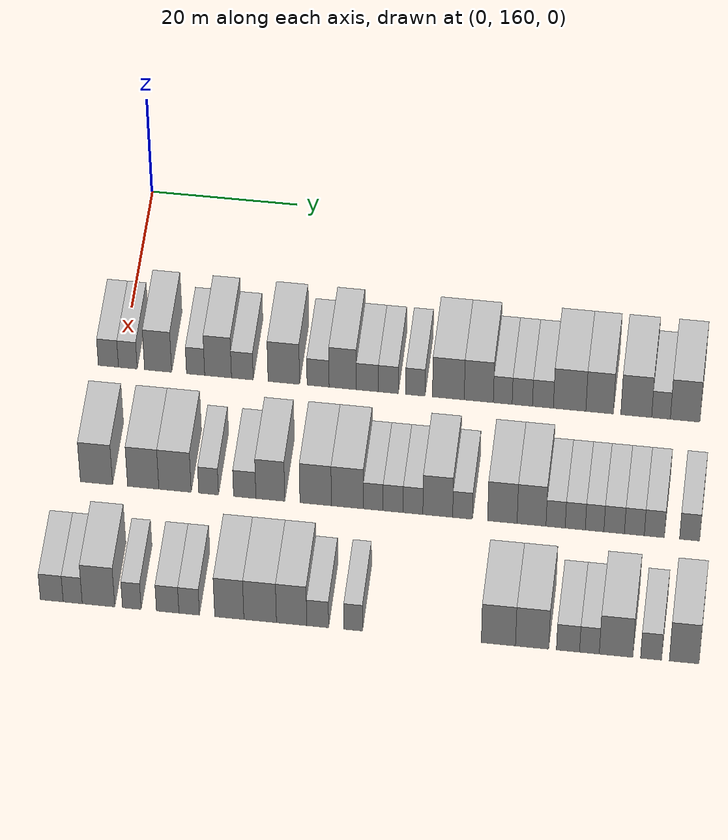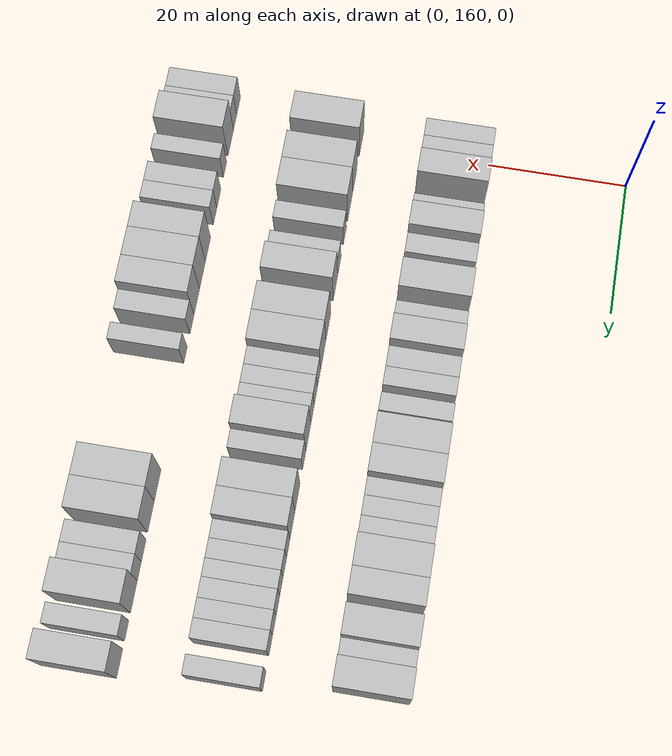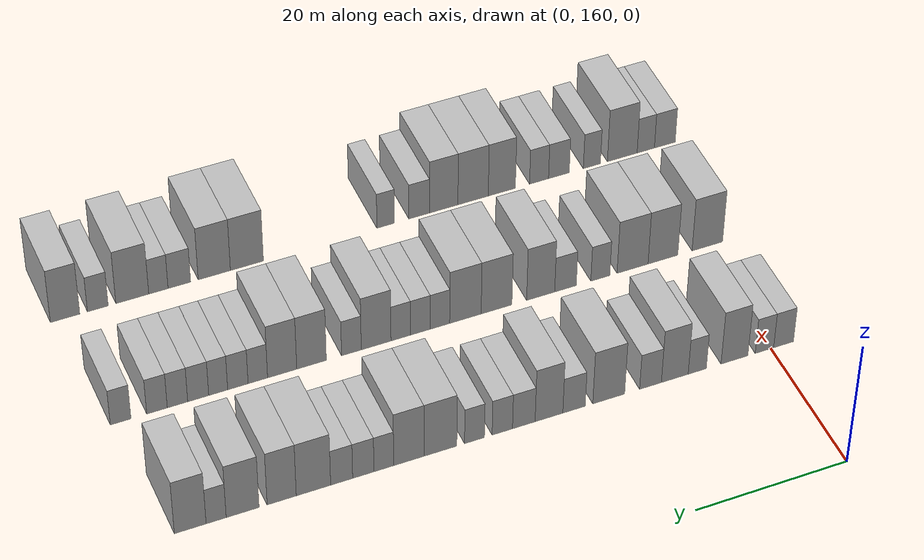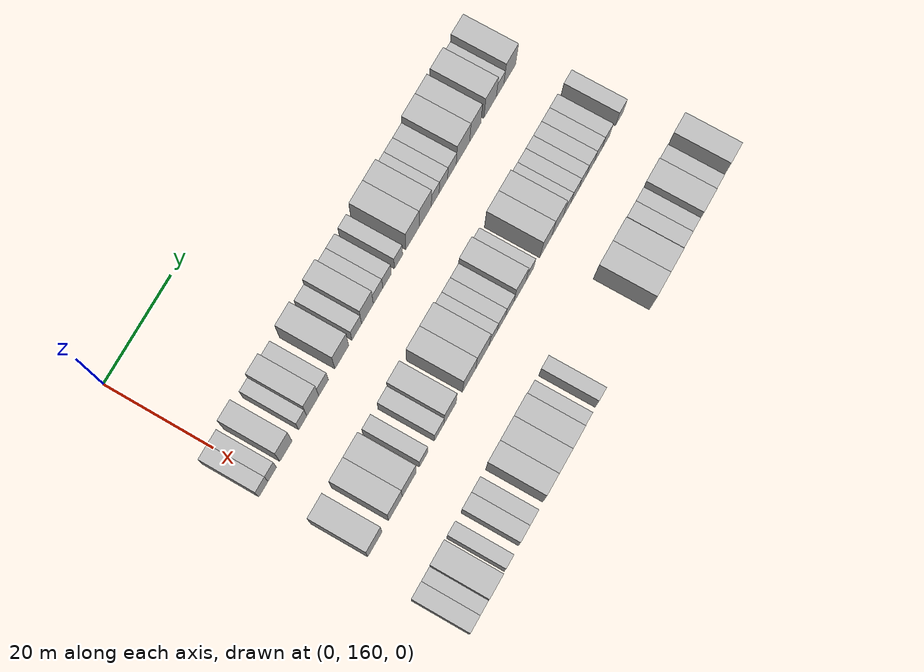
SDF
<sdf version="1.6">
 <world name="default">
  <model name="building_101">
   <static>1</static>
   <pose>25.0000 158.3298 0 0.000000 0.000000 0.000000</pose>
   <link name="link">
    <pose>0 0 3.00 0 0 0</pose>
    <collision name="collision"><geometry><box><size>10.0000 2.7165 6.0000</size></box></geometry></collision>
    <visual name="visual">
     <cast_shadows>0</cast_shadows>
     <geometry><box><size>10.0000 2.7165 6.0000</size></box></geometry>
     <material>
      <script>
       <uri>model://HANNAS_wall/materials/scripts</uri>
       <uri>model://HANNAS_wall/materials/textures</uri>
       <name>vrc/HANNAS_wall</name>
      </script>
     </material>
    </visual>
   </link>
  </model>
  <model name="building_102">
   <static>1</static>
   <pose>25.0000 160.9540 0 0.000000 0.000000 0.000000</pose>
   <link name="link">
    <pose>0 0 3.00 0 0 0</pose>
    <collision name="collision"><geometry><box><size>10.0000 2.5319 6.0000</size></box></geometry></collision>
    <visual name="visual">
     <cast_shadows>0</cast_shadows>
     <geometry><box><size>10.0000 2.5319 6.0000</size></box></geometry>
     <material>
      <script>
       <uri>model://HANNAS_wall/materials/scripts</uri>
       <uri>model://HANNAS_wall/materials/textures</uri>
       <name>vrc/HANNAS_wall</name>
      </script>
     </material>
    </visual>
   </link>
  </model>
  <model name="building_103">
   <static>1</static>
   <pose>25.0000 165.0510 0 0.000000 0.000000 0.000000</pose>
   <link name="link">
    <pose>0 0 4.50 0 0 0</pose>
    <collision name="collision"><geometry><box><size>10.0000 3.6620 9.0000</size></box></geometry></collision>
    <visual name="visual">
     <cast_shadows>0</cast_shadows>
     <geometry><box><size>10.0000 3.6620 9.0000</size></box></geometry>
     <material>
      <script>
       <uri>model://HANNAS_wall/materials/scripts</uri>
       <uri>model://HANNAS_wall/materials/textures</uri>
       <name>vrc/HANNAS_wall</name>
      </script>
     </material>
    </visual>
   </link>
  </model>
  <model name="building_104">
   <static>1</static>
   <pose>25.0000 170.1098 0 0.000000 0.000000 0.000000</pose>
   <link name="link">
    <pose>0 0 3.00 0 0 0</pose>
    <collision name="collision"><geometry><box><size>10.0000 2.4556 6.0000</size></box></geometry></collision>
    <visual name="visual">
     <cast_shadows>0</cast_shadows>
     <geometry><box><size>10.0000 2.4556 6.0000</size></box></geometry>
     <material>
      <script>
       <uri>model://HANNAS_wall/materials/scripts</uri>
       <uri>model://HANNAS_wall/materials/textures</uri>
       <name>vrc/HANNAS_wall</name>
      </script>
     </material>
    </visual>
   </link>
  </model>
  <model name="building_105">
   <static>1</static>
   <pose>25.0000 173.1422 0 0.000000 0.000000 0.000000</pose>
   <link name="link">
    <pose>0 0 4.50 0 0 0</pose>
    <collision name="collision"><geometry><box><size>10.0000 3.6090 9.0000</size></box></geometry></collision>
    <visual name="visual">
     <cast_shadows>0</cast_shadows>
     <geometry><box><size>10.0000 3.6090 9.0000</size></box></geometry>
     <material>
      <script>
       <uri>model://HANNAS_wall/materials/scripts</uri>
       <uri>model://HANNAS_wall/materials/textures</uri>
       <name>vrc/HANNAS_wall</name>
      </script>
     </material>
    </visual>
   </link>
  </model>
  <model name="building_106">
   <static>1</static>
   <pose>25.0000 176.4100 0 0.000000 0.000000 0.000000</pose>
   <link name="link">
    <pose>0 0 3.00 0 0 0</pose>
    <collision name="collision"><geometry><box><size>10.0000 2.9267 6.0000</size></box></geometry></collision>
    <visual name="visual">
     <cast_shadows>0</cast_shadows>
     <geometry><box><size>10.0000 2.9267 6.0000</size></box></geometry>
     <material>
      <script>
       <uri>model://HANNAS_wall/materials/scripts</uri>
       <uri>model://HANNAS_wall/materials/textures</uri>
       <name>vrc/HANNAS_wall</name>
      </script>
     </material>
    </visual>
   </link>
  </model>
  <model name="building_107">
   <static>1</static>
   <pose>25.0000 181.9964 0 0.000000 0.000000 0.000000</pose>
   <link name="link">
    <pose>0 0 4.50 0 0 0</pose>
    <collision name="collision"><geometry><box><size>10.0000 4.2461 9.0000</size></box></geometry></collision>
    <visual name="visual">
     <cast_shadows>0</cast_shadows>
     <geometry><box><size>10.0000 4.2461 9.0000</size></box></geometry>
     <material>
      <script>
       <uri>model://HANNAS_wall/materials/scripts</uri>
       <uri>model://HANNAS_wall/materials/textures</uri>
       <name>vrc/HANNAS_wall</name>
      </script>
     </material>
    </visual>
   </link>
  </model>
  <model name="building_108">
   <static>1</static>
   <pose>25.0000 186.6032 0 0.000000 0.000000 0.000000</pose>
   <link name="link">
    <pose>0 0 3.00 0 0 0</pose>
    <collision name="collision"><geometry><box><size>10.0000 2.9675 6.0000</size></box></geometry></collision>
    <visual name="visual">
     <cast_shadows>0</cast_shadows>
     <geometry><box><size>10.0000 2.9675 6.0000</size></box></geometry>
     <material>
      <script>
       <uri>model://HANNAS_wall/materials/scripts</uri>
       <uri>model://HANNAS_wall/materials/textures</uri>
       <name>vrc/HANNAS_wall</name>
      </script>
     </material>
    </visual>
   </link>
  </model>
  <model name="building_109">
   <static>1</static>
   <pose>25.0000 189.9168 0 0.000000 0.000000 0.000000</pose>
   <link name="link">
    <pose>0 0 4.50 0 0 0</pose>
    <collision name="collision"><geometry><box><size>10.0000 3.6596 9.0000</size></box></geometry></collision>
    <visual name="visual">
     <cast_shadows>0</cast_shadows>
     <geometry><box><size>10.0000 3.6596 9.0000</size></box></geometry>
     <material>
      <script>
       <uri>model://HANNAS_wall/materials/scripts</uri>
       <uri>model://HANNAS_wall/materials/textures</uri>
       <name>vrc/HANNAS_wall</name>
      </script>
     </material>
    </visual>
   </link>
  </model>
  <model name="building_110">
   <static>1</static>
   <pose>25.0000 193.2281 0 0.000000 0.000000 0.000000</pose>
   <link name="link">
    <pose>0 0 3.00 0 0 0</pose>
    <collision name="collision"><geometry><box><size>10.0000 2.9630 6.0000</size></box></geometry></collision>
    <visual name="visual">
     <cast_shadows>0</cast_shadows>
     <geometry><box><size>10.0000 2.9630 6.0000</size></box></geometry>
     <material>
      <script>
       <uri>model://HANNAS_wall/materials/scripts</uri>
       <uri>model://HANNAS_wall/materials/textures</uri>
       <name>vrc/HANNAS_wall</name>
      </script>
     </material>
    </visual>
   </link>
  </model>
  <model name="building_111">
   <static>1</static>
   <pose>25.0000 196.0429 0 0.000000 0.000000 0.000000</pose>
   <link name="link">
    <pose>0 0 3.00 0 0 0</pose>
    <collision name="collision"><geometry><box><size>10.0000 2.6667 6.0000</size></box></geometry></collision>
    <visual name="visual">
     <cast_shadows>0</cast_shadows>
     <geometry><box><size>10.0000 2.6667 6.0000</size></box></geometry>
     <material>
      <script>
       <uri>model://HANNAS_wall/materials/scripts</uri>
       <uri>model://HANNAS_wall/materials/textures</uri>
       <name>vrc/HANNAS_wall</name>
      </script>
     </material>
    </visual>
   </link>
  </model>
  <model name="building_112">
   <static>1</static>
   <pose>25.0000 199.6709 0 0.000000 0.000000 0.000000</pose>
   <link name="link">
    <pose>0 0 3.00 0 0 0</pose>
    <collision name="collision"><geometry><box><size>10.0000 2.5892 6.0000</size></box></geometry></collision>
    <visual name="visual">
     <cast_shadows>0</cast_shadows>
     <geometry><box><size>10.0000 2.5892 6.0000</size></box></geometry>
     <material>
      <script>
       <uri>model://HANNAS_wall/materials/scripts</uri>
       <uri>model://HANNAS_wall/materials/textures</uri>
       <name>vrc/HANNAS_wall</name>
      </script>
     </material>
    </visual>
   </link>
  </model>
  <model name="building_113">
   <static>1</static>
   <pose>25.0000 204.0919 0 0.000000 0.000000 0.000000</pose>
   <link name="link">
    <pose>0 0 4.50 0 0 0</pose>
    <collision name="collision"><geometry><box><size>10.0000 4.2529 9.0000</size></box></geometry></collision>
    <visual name="visual">
     <cast_shadows>0</cast_shadows>
     <geometry><box><size>10.0000 4.2529 9.0000</size></box></geometry>
     <material>
      <script>
       <uri>model://HANNAS_wall/materials/scripts</uri>
       <uri>model://HANNAS_wall/materials/textures</uri>
       <name>vrc/HANNAS_wall</name>
      </script>
     </material>
    </visual>
   </link>
  </model>
  <model name="building_114">
   <static>1</static>
   <pose>25.0000 208.1643 0 0.000000 0.000000 0.000000</pose>
   <link name="link">
    <pose>0 0 4.50 0 0 0</pose>
    <collision name="collision"><geometry><box><size>10.0000 3.8919 9.0000</size></box></geometry></collision>
    <visual name="visual">
     <cast_shadows>0</cast_shadows>
     <geometry><box><size>10.0000 3.8919 9.0000</size></box></geometry>
     <material>
      <script>
       <uri>model://HANNAS_wall/materials/scripts</uri>
       <uri>model://HANNAS_wall/materials/textures</uri>
       <name>vrc/HANNAS_wall</name>
      </script>
     </material>
    </visual>
   </link>
  </model>
  <model name="building_115">
   <static>1</static>
   <pose>25.0000 211.3711 0 0.000000 0.000000 0.000000</pose>
   <link name="link">
    <pose>0 0 3.00 0 0 0</pose>
    <collision name="collision"><geometry><box><size>10.0000 2.5217 6.0000</size></box></geometry></collision>
    <visual name="visual">
     <cast_shadows>0</cast_shadows>
     <geometry><box><size>10.0000 2.5217 6.0000</size></box></geometry>
     <material>
      <script>
       <uri>model://HANNAS_wall/materials/scripts</uri>
       <uri>model://HANNAS_wall/materials/textures</uri>
       <name>vrc/HANNAS_wall</name>
      </script>
     </material>
    </visual>
   </link>
  </model>
  <model name="building_116">
   <static>1</static>
   <pose>25.0000 213.9885 0 0.000000 0.000000 0.000000</pose>
   <link name="link">
    <pose>0 0 3.00 0 0 0</pose>
    <collision name="collision"><geometry><box><size>10.0000 2.7131 6.0000</size></box></geometry></collision>
    <visual name="visual">
     <cast_shadows>0</cast_shadows>
     <geometry><box><size>10.0000 2.7131 6.0000</size></box></geometry>
     <material>
      <script>
       <uri>model://HANNAS_wall/materials/scripts</uri>
       <uri>model://HANNAS_wall/materials/textures</uri>
       <name>vrc/HANNAS_wall</name>
      </script>
     </material>
    </visual>
   </link>
  </model>
  <model name="building_117">
   <static>1</static>
   <pose>25.0000 216.7431 0 0.000000 0.000000 0.000000</pose>
   <link name="link">
    <pose>0 0 3.00 0 0 0</pose>
    <collision name="collision"><geometry><box><size>10.0000 2.7962 6.0000</size></box></geometry></collision>
    <visual name="visual">
     <cast_shadows>0</cast_shadows>
     <geometry><box><size>10.0000 2.7962 6.0000</size></box></geometry>
     <material>
      <script>
       <uri>model://HANNAS_wall/materials/scripts</uri>
       <uri>model://HANNAS_wall/materials/textures</uri>
       <name>vrc/HANNAS_wall</name>
      </script>
     </material>
    </visual>
   </link>
  </model>
  <model name="building_118">
   <static>1</static>
   <pose>25.0000 220.3142 0 0.000000 0.000000 0.000000</pose>
   <link name="link">
    <pose>0 0 4.50 0 0 0</pose>
    <collision name="collision"><geometry><box><size>10.0000 4.3459 9.0000</size></box></geometry></collision>
    <visual name="visual">
     <cast_shadows>0</cast_shadows>
     <geometry><box><size>10.0000 4.3459 9.0000</size></box></geometry>
     <material>
      <script>
       <uri>model://HANNAS_wall/materials/scripts</uri>
       <uri>model://HANNAS_wall/materials/textures</uri>
       <name>vrc/HANNAS_wall</name>
      </script>
     </material>
    </visual>
   </link>
  </model>
  <model name="building_119">
   <static>1</static>
   <pose>25.0000 224.3192 0 0.000000 0.000000 0.000000</pose>
   <link name="link">
    <pose>0 0 4.50 0 0 0</pose>
    <collision name="collision"><geometry><box><size>10.0000 3.6641 9.0000</size></box></geometry></collision>
    <visual name="visual">
     <cast_shadows>0</cast_shadows>
     <geometry><box><size>10.0000 3.6641 9.0000</size></box></geometry>
     <material>
      <script>
       <uri>model://HANNAS_wall/materials/scripts</uri>
       <uri>model://HANNAS_wall/materials/textures</uri>
       <name>vrc/HANNAS_wall</name>
      </script>
     </material>
    </visual>
   </link>
  </model>
  <model name="building_120">
   <static>1</static>
   <pose>25.0000 229.2079 0 0.000000 0.000000 0.000000</pose>
   <link name="link">
    <pose>0 0 4.50 0 0 0</pose>
    <collision name="collision"><geometry><box><size>10.0000 4.1132 9.0000</size></box></geometry></collision>
    <visual name="visual">
     <cast_shadows>0</cast_shadows>
     <geometry><box><size>10.0000 4.1132 9.0000</size></box></geometry>
     <material>
      <script>
       <uri>model://HANNAS_wall/materials/scripts</uri>
       <uri>model://HANNAS_wall/materials/textures</uri>
       <name>vrc/HANNAS_wall</name>
      </script>
     </material>
    </visual>
   </link>
  </model>
  <model name="building_121">
   <static>1</static>
   <pose>25.0000 232.5116 0 0.000000 0.000000 0.000000</pose>
   <link name="link">
    <pose>0 0 3.00 0 0 0</pose>
    <collision name="collision"><geometry><box><size>10.0000 2.4943 6.0000</size></box></geometry></collision>
    <visual name="visual">
     <cast_shadows>0</cast_shadows>
     <geometry><box><size>10.0000 2.4943 6.0000</size></box></geometry>
     <material>
      <script>
       <uri>model://HANNAS_wall/materials/scripts</uri>
       <uri>model://HANNAS_wall/materials/textures</uri>
       <name>vrc/HANNAS_wall</name>
      </script>
     </material>
    </visual>
   </link>
  </model>
  <model name="building_122">
   <static>1</static>
   <pose>25.0000 235.7272 0 0.000000 0.000000 0.000000</pose>
   <link name="link">
    <pose>0 0 4.50 0 0 0</pose>
    <collision name="collision"><geometry><box><size>10.0000 3.9369 9.0000</size></box></geometry></collision>
    <visual name="visual">
     <cast_shadows>0</cast_shadows>
     <geometry><box><size>10.0000 3.9369 9.0000</size></box></geometry>
     <material>
      <script>
       <uri>model://HANNAS_wall/materials/scripts</uri>
       <uri>model://HANNAS_wall/materials/textures</uri>
       <name>vrc/HANNAS_wall</name>
      </script>
     </material>
    </visual>
   </link>
  </model>
  <model name="building_229">
   <static>1</static>
   <pose>44.0000 159.5245 0 0.000000 0.000000 0.000000</pose>
   <link name="link">
    <pose>0 0 4.50 0 0 0</pose>
    <collision name="collision"><geometry><box><size>10.0000 4.2834 9.0000</size></box></geometry></collision>
    <visual name="visual">
     <cast_shadows>0</cast_shadows>
     <geometry><box><size>10.0000 4.2834 9.0000</size></box></geometry>
     <material>
      <script>
       <uri>model://HANNAS_wall/materials/scripts</uri>
       <uri>model://HANNAS_wall/materials/textures</uri>
       <name>vrc/HANNAS_wall</name>
      </script>
     </material>
    </visual>
   </link>
  </model>
  <model name="building_230">
   <static>1</static>
   <pose>44.0000 165.7416 0 0.000000 0.000000 0.000000</pose>
   <link name="link">
    <pose>0 0 4.50 0 0 0</pose>
    <collision name="collision"><geometry><box><size>10.0000 4.1507 9.0000</size></box></geometry></collision>
    <visual name="visual">
     <cast_shadows>0</cast_shadows>
     <geometry><box><size>10.0000 4.1507 9.0000</size></box></geometry>
     <material>
      <script>
       <uri>model://HANNAS_wall/materials/scripts</uri>
       <uri>model://HANNAS_wall/materials/textures</uri>
       <name>vrc/HANNAS_wall</name>
      </script>
     </material>
    </visual>
   </link>
  </model>
  <model name="building_231">
   <static>1</static>
   <pose>44.0000 169.9679 0 0.000000 0.000000 0.000000</pose>
   <link name="link">
    <pose>0 0 4.50 0 0 0</pose>
    <collision name="collision"><geometry><box><size>10.0000 4.3020 9.0000</size></box></geometry></collision>
    <visual name="visual">
     <cast_shadows>0</cast_shadows>
     <geometry><box><size>10.0000 4.3020 9.0000</size></box></geometry>
     <material>
      <script>
       <uri>model://HANNAS_wall/materials/scripts</uri>
       <uri>model://HANNAS_wall/materials/textures</uri>
       <name>vrc/HANNAS_wall</name>
      </script>
     </material>
    </visual>
   </link>
  </model>
  <model name="building_232">
   <static>1</static>
   <pose>44.0000 174.4288 0 0.000000 0.000000 0.000000</pose>
   <link name="link">
    <pose>0 0 3.00 0 0 0</pose>
    <collision name="collision"><geometry><box><size>10.0000 2.6199 6.0000</size></box></geometry></collision>
    <visual name="visual">
     <cast_shadows>0</cast_shadows>
     <geometry><box><size>10.0000 2.6199 6.0000</size></box></geometry>
     <material>
      <script>
       <uri>model://HANNAS_wall/materials/scripts</uri>
       <uri>model://HANNAS_wall/materials/textures</uri>
       <name>vrc/HANNAS_wall</name>
      </script>
     </material>
    </visual>
   </link>
  </model>
  <model name="building_233">
   <static>1</static>
   <pose>44.0000 179.2214 0 0.000000 0.000000 0.000000</pose>
   <link name="link">
    <pose>0 0 3.00 0 0 0</pose>
    <collision name="collision"><geometry><box><size>10.0000 2.9653 6.0000</size></box></geometry></collision>
    <visual name="visual">
     <cast_shadows>0</cast_shadows>
     <geometry><box><size>10.0000 2.9653 6.0000</size></box></geometry>
     <material>
      <script>
       <uri>model://HANNAS_wall/materials/scripts</uri>
       <uri>model://HANNAS_wall/materials/textures</uri>
       <name>vrc/HANNAS_wall</name>
      </script>
     </material>
    </visual>
   </link>
  </model>
  <model name="building_234">
   <static>1</static>
   <pose>44.0000 182.6194 0 0.000000 0.000000 0.000000</pose>
   <link name="link">
    <pose>0 0 4.50 0 0 0</pose>
    <collision name="collision"><geometry><box><size>10.0000 3.8306 9.0000</size></box></geometry></collision>
    <visual name="visual">
     <cast_shadows>0</cast_shadows>
     <geometry><box><size>10.0000 3.8306 9.0000</size></box></geometry>
     <material>
      <script>
       <uri>model://HANNAS_wall/materials/scripts</uri>
       <uri>model://HANNAS_wall/materials/textures</uri>
       <name>vrc/HANNAS_wall</name>
      </script>
     </material>
    </visual>
   </link>
  </model>
  <model name="building_235">
   <static>1</static>
   <pose>44.0000 188.6173 0 0.000000 0.000000 0.000000</pose>
   <link name="link">
    <pose>0 0 4.50 0 0 0</pose>
    <collision name="collision"><geometry><box><size>10.0000 4.1652 9.0000</size></box></geometry></collision>
    <visual name="visual">
     <cast_shadows>0</cast_shadows>
     <geometry><box><size>10.0000 4.1652 9.0000</size></box></geometry>
     <material>
      <script>
       <uri>model://HANNAS_wall/materials/scripts</uri>
       <uri>model://HANNAS_wall/materials/textures</uri>
       <name>vrc/HANNAS_wall</name>
      </script>
     </material>
    </visual>
   </link>
  </model>
  <model name="building_236">
   <static>1</static>
   <pose>44.0000 192.8203 0 0.000000 0.000000 0.000000</pose>
   <link name="link">
    <pose>0 0 4.50 0 0 0</pose>
    <collision name="collision"><geometry><box><size>10.0000 4.2407 9.0000</size></box></geometry></collision>
    <visual name="visual">
     <cast_shadows>0</cast_shadows>
     <geometry><box><size>10.0000 4.2407 9.0000</size></box></geometry>
     <material>
      <script>
       <uri>model://HANNAS_wall/materials/scripts</uri>
       <uri>model://HANNAS_wall/materials/textures</uri>
       <name>vrc/HANNAS_wall</name>
      </script>
     </material>
    </visual>
   </link>
  </model>
  <model name="building_237">
   <static>1</static>
   <pose>44.0000 196.2400 0 0.000000 0.000000 0.000000</pose>
   <link name="link">
    <pose>0 0 3.00 0 0 0</pose>
    <collision name="collision"><geometry><box><size>10.0000 2.5988 6.0000</size></box></geometry></collision>
    <visual name="visual">
     <cast_shadows>0</cast_shadows>
     <geometry><box><size>10.0000 2.5988 6.0000</size></box></geometry>
     <material>
      <script>
       <uri>model://HANNAS_wall/materials/scripts</uri>
       <uri>model://HANNAS_wall/materials/textures</uri>
       <name>vrc/HANNAS_wall</name>
      </script>
     </material>
    </visual>
   </link>
  </model>
  <model name="building_238">
   <static>1</static>
   <pose>44.0000 198.8596 0 0.000000 0.000000 0.000000</pose>
   <link name="link">
    <pose>0 0 3.00 0 0 0</pose>
    <collision name="collision"><geometry><box><size>10.0000 2.6403 6.0000</size></box></geometry></collision>
    <visual name="visual">
     <cast_shadows>0</cast_shadows>
     <geometry><box><size>10.0000 2.6403 6.0000</size></box></geometry>
     <material>
      <script>
       <uri>model://HANNAS_wall/materials/scripts</uri>
       <uri>model://HANNAS_wall/materials/textures</uri>
       <name>vrc/HANNAS_wall</name>
      </script>
     </material>
    </visual>
   </link>
  </model>
  <model name="building_239">
   <static>1</static>
   <pose>44.0000 201.4813 0 0.000000 0.000000 0.000000</pose>
   <link name="link">
    <pose>0 0 3.00 0 0 0</pose>
    <collision name="collision"><geometry><box><size>10.0000 2.6031 6.0000</size></box></geometry></collision>
    <visual name="visual">
     <cast_shadows>0</cast_shadows>
     <geometry><box><size>10.0000 2.6031 6.0000</size></box></geometry>
     <material>
      <script>
       <uri>model://HANNAS_wall/materials/scripts</uri>
       <uri>model://HANNAS_wall/materials/textures</uri>
       <name>vrc/HANNAS_wall</name>
      </script>
     </material>
    </visual>
   </link>
  </model>
  <model name="building_240">
   <static>1</static>
   <pose>44.0000 204.7507 0 0.000000 0.000000 0.000000</pose>
   <link name="link">
    <pose>0 0 4.50 0 0 0</pose>
    <collision name="collision"><geometry><box><size>10.0000 3.9356 9.0000</size></box></geometry></collision>
    <visual name="visual">
     <cast_shadows>0</cast_shadows>
     <geometry><box><size>10.0000 3.9356 9.0000</size></box></geometry>
     <material>
      <script>
       <uri>model://HANNAS_wall/materials/scripts</uri>
       <uri>model://HANNAS_wall/materials/textures</uri>
       <name>vrc/HANNAS_wall</name>
      </script>
     </material>
    </visual>
   </link>
  </model>
  <model name="building_241">
   <static>1</static>
   <pose>44.0000 208.0193 0 0.000000 0.000000 0.000000</pose>
   <link name="link">
    <pose>0 0 3.00 0 0 0</pose>
    <collision name="collision"><geometry><box><size>10.0000 2.6017 6.0000</size></box></geometry></collision>
    <visual name="visual">
     <cast_shadows>0</cast_shadows>
     <geometry><box><size>10.0000 2.6017 6.0000</size></box></geometry>
     <material>
      <script>
       <uri>model://HANNAS_wall/materials/scripts</uri>
       <uri>model://HANNAS_wall/materials/textures</uri>
       <name>vrc/HANNAS_wall</name>
      </script>
     </material>
    </visual>
   </link>
  </model>
  <model name="building_242">
   <static>1</static>
   <pose>44.0000 213.2588 0 0.000000 0.000000 0.000000</pose>
   <link name="link">
    <pose>0 0 4.50 0 0 0</pose>
    <collision name="collision"><geometry><box><size>10.0000 3.8773 9.0000</size></box></geometry></collision>
    <visual name="visual">
     <cast_shadows>0</cast_shadows>
     <geometry><box><size>10.0000 3.8773 9.0000</size></box></geometry>
     <material>
      <script>
       <uri>model://HANNAS_wall/materials/scripts</uri>
       <uri>model://HANNAS_wall/materials/textures</uri>
       <name>vrc/HANNAS_wall</name>
      </script>
     </material>
    </visual>
   </link>
  </model>
  <model name="building_243">
   <static>1</static>
   <pose>44.0000 217.1002 0 0.000000 0.000000 0.000000</pose>
   <link name="link">
    <pose>0 0 4.50 0 0 0</pose>
    <collision name="collision"><geometry><box><size>10.0000 3.8054 9.0000</size></box></geometry></collision>
    <visual name="visual">
     <cast_shadows>0</cast_shadows>
     <geometry><box><size>10.0000 3.8054 9.0000</size></box></geometry>
     <material>
      <script>
       <uri>model://HANNAS_wall/materials/scripts</uri>
       <uri>model://HANNAS_wall/materials/textures</uri>
       <name>vrc/HANNAS_wall</name>
      </script>
     </material>
    </visual>
   </link>
  </model>
  <model name="building_244">
   <static>1</static>
   <pose>44.0000 220.2680 0 0.000000 0.000000 0.000000</pose>
   <link name="link">
    <pose>0 0 3.00 0 0 0</pose>
    <collision name="collision"><geometry><box><size>10.0000 2.5302 6.0000</size></box></geometry></collision>
    <visual name="visual">
     <cast_shadows>0</cast_shadows>
     <geometry><box><size>10.0000 2.5302 6.0000</size></box></geometry>
     <material>
      <script>
       <uri>model://HANNAS_wall/materials/scripts</uri>
       <uri>model://HANNAS_wall/materials/textures</uri>
       <name>vrc/HANNAS_wall</name>
      </script>
     </material>
    </visual>
   </link>
  </model>
  <model name="building_245">
   <static>1</static>
   <pose>44.0000 222.8533 0 0.000000 0.000000 0.000000</pose>
   <link name="link">
    <pose>0 0 3.00 0 0 0</pose>
    <collision name="collision"><geometry><box><size>10.0000 2.6404 6.0000</size></box></geometry></collision>
    <visual name="visual">
     <cast_shadows>0</cast_shadows>
     <geometry><box><size>10.0000 2.6404 6.0000</size></box></geometry>
     <material>
      <script>
       <uri>model://HANNAS_wall/materials/scripts</uri>
       <uri>model://HANNAS_wall/materials/textures</uri>
       <name>vrc/HANNAS_wall</name>
      </script>
     </material>
    </visual>
   </link>
  </model>
  <model name="building_246">
   <static>1</static>
   <pose>44.0000 225.3960 0 0.000000 0.000000 0.000000</pose>
   <link name="link">
    <pose>0 0 3.00 0 0 0</pose>
    <collision name="collision"><geometry><box><size>10.0000 2.4448 6.0000</size></box></geometry></collision>
    <visual name="visual">
     <cast_shadows>0</cast_shadows>
     <geometry><box><size>10.0000 2.4448 6.0000</size></box></geometry>
     <material>
      <script>
       <uri>model://HANNAS_wall/materials/scripts</uri>
       <uri>model://HANNAS_wall/materials/textures</uri>
       <name>vrc/HANNAS_wall</name>
      </script>
     </material>
    </visual>
   </link>
  </model>
  <model name="building_247">
   <static>1</static>
   <pose>44.0000 227.9673 0 0.000000 0.000000 0.000000</pose>
   <link name="link">
    <pose>0 0 3.00 0 0 0</pose>
    <collision name="collision"><geometry><box><size>10.0000 2.6977 6.0000</size></box></geometry></collision>
    <visual name="visual">
     <cast_shadows>0</cast_shadows>
     <geometry><box><size>10.0000 2.6977 6.0000</size></box></geometry>
     <material>
      <script>
       <uri>model://HANNAS_wall/materials/scripts</uri>
       <uri>model://HANNAS_wall/materials/textures</uri>
       <name>vrc/HANNAS_wall</name>
      </script>
     </material>
    </visual>
   </link>
  </model>
  <model name="building_248">
   <static>1</static>
   <pose>44.0000 230.6230 0 0.000000 0.000000 0.000000</pose>
   <link name="link">
    <pose>0 0 3.00 0 0 0</pose>
    <collision name="collision"><geometry><box><size>10.0000 2.6138 6.0000</size></box></geometry></collision>
    <visual name="visual">
     <cast_shadows>0</cast_shadows>
     <geometry><box><size>10.0000 2.6138 6.0000</size></box></geometry>
     <material>
      <script>
       <uri>model://HANNAS_wall/materials/scripts</uri>
       <uri>model://HANNAS_wall/materials/textures</uri>
       <name>vrc/HANNAS_wall</name>
      </script>
     </material>
    </visual>
   </link>
  </model>
  <model name="building_249">
   <static>1</static>
   <pose>44.0000 233.2439 0 0.000000 0.000000 0.000000</pose>
   <link name="link">
    <pose>0 0 3.00 0 0 0</pose>
    <collision name="collision"><geometry><box><size>10.0000 2.6280 6.0000</size></box></geometry></collision>
    <visual name="visual">
     <cast_shadows>0</cast_shadows>
     <geometry><box><size>10.0000 2.6280 6.0000</size></box></geometry>
     <material>
      <script>
       <uri>model://HANNAS_wall/materials/scripts</uri>
       <uri>model://HANNAS_wall/materials/textures</uri>
       <name>vrc/HANNAS_wall</name>
      </script>
     </material>
    </visual>
   </link>
  </model>
  <model name="building_250">
   <static>1</static>
   <pose>44.0000 237.8700 0 0.000000 0.000000 0.000000</pose>
   <link name="link">
    <pose>0 0 3.00 0 0 0</pose>
    <collision name="collision"><geometry><box><size>10.0000 2.6243 6.0000</size></box></geometry></collision>
    <visual name="visual">
     <cast_shadows>0</cast_shadows>
     <geometry><box><size>10.0000 2.6243 6.0000</size></box></geometry>
     <material>
      <script>
       <uri>model://HANNAS_wall/materials/scripts</uri>
       <uri>model://HANNAS_wall/materials/textures</uri>
       <name>vrc/HANNAS_wall</name>
      </script>
     </material>
    </visual>
   </link>
  </model>
  <model name="building_357">
   <static>1</static>
   <pose>63.0000 156.4724 0 0.000000 0.000000 0.000000</pose>
   <link name="link">
    <pose>0 0 3.00 0 0 0</pose>
    <collision name="collision"><geometry><box><size>10.0000 2.9996 6.0000</size></box></geometry></collision>
    <visual name="visual">
     <cast_shadows>0</cast_shadows>
     <geometry><box><size>10.0000 2.9996 6.0000</size></box></geometry>
     <material>
      <script>
       <uri>model://HANNAS_wall/materials/scripts</uri>
       <uri>model://HANNAS_wall/materials/textures</uri>
       <name>vrc/HANNAS_wall</name>
      </script>
     </material>
    </visual>
   </link>
  </model>
  <model name="building_358">
   <static>1</static>
   <pose>63.0000 159.2194 0 0.000000 0.000000 0.000000</pose>
   <link name="link">
    <pose>0 0 3.00 0 0 0</pose>
    <collision name="collision"><geometry><box><size>10.0000 2.4943 6.0000</size></box></geometry></collision>
    <visual name="visual">
     <cast_shadows>0</cast_shadows>
     <geometry><box><size>10.0000 2.4943 6.0000</size></box></geometry>
     <material>
      <script>
       <uri>model://HANNAS_wall/materials/scripts</uri>
       <uri>model://HANNAS_wall/materials/textures</uri>
       <name>vrc/HANNAS_wall</name>
      </script>
     </material>
    </visual>
   </link>
  </model>
  <model name="building_359">
   <static>1</static>
   <pose>63.0000 162.5985 0 0.000000 0.000000 0.000000</pose>
   <link name="link">
    <pose>0 0 4.50 0 0 0</pose>
    <collision name="collision"><geometry><box><size>10.0000 4.2641 9.0000</size></box></geometry></collision>
    <visual name="visual">
     <cast_shadows>0</cast_shadows>
     <geometry><box><size>10.0000 4.2641 9.0000</size></box></geometry>
     <material>
      <script>
       <uri>model://HANNAS_wall/materials/scripts</uri>
       <uri>model://HANNAS_wall/materials/textures</uri>
       <name>vrc/HANNAS_wall</name>
      </script>
     </material>
    </visual>
   </link>
  </model>
  <model name="building_360">
   <static>1</static>
   <pose>63.0000 166.9523 0 0.000000 0.000000 0.000000</pose>
   <link name="link">
    <pose>0 0 3.00 0 0 0</pose>
    <collision name="collision"><geometry><box><size>10.0000 2.4433 6.0000</size></box></geometry></collision>
    <visual name="visual">
     <cast_shadows>0</cast_shadows>
     <geometry><box><size>10.0000 2.4433 6.0000</size></box></geometry>
     <material>
      <script>
       <uri>model://HANNAS_wall/materials/scripts</uri>
       <uri>model://HANNAS_wall/materials/textures</uri>
       <name>vrc/HANNAS_wall</name>
      </script>
     </material>
    </visual>
   </link>
  </model>
  <model name="building_361">
   <static>1</static>
   <pose>63.0000 171.6432 0 0.000000 0.000000 0.000000</pose>
   <link name="link">
    <pose>0 0 3.00 0 0 0</pose>
    <collision name="collision"><geometry><box><size>10.0000 2.9385 6.0000</size></box></geometry></collision>
    <visual name="visual">
     <cast_shadows>0</cast_shadows>
     <geometry><box><size>10.0000 2.9385 6.0000</size></box></geometry>
     <material>
      <script>
       <uri>model://HANNAS_wall/materials/scripts</uri>
       <uri>model://HANNAS_wall/materials/textures</uri>
       <name>vrc/HANNAS_wall</name>
      </script>
     </material>
    </visual>
   </link>
  </model>
  <model name="building_362">
   <static>1</static>
   <pose>63.0000 174.4529 0 0.000000 0.000000 0.000000</pose>
   <link name="link">
    <pose>0 0 3.00 0 0 0</pose>
    <collision name="collision"><geometry><box><size>10.0000 2.6810 6.0000</size></box></geometry></collision>
    <visual name="visual">
     <cast_shadows>0</cast_shadows>
     <geometry><box><size>10.0000 2.6810 6.0000</size></box></geometry>
     <material>
      <script>
       <uri>model://HANNAS_wall/materials/scripts</uri>
       <uri>model://HANNAS_wall/materials/textures</uri>
       <name>vrc/HANNAS_wall</name>
      </script>
     </material>
    </visual>
   </link>
  </model>
  <model name="building_363">
   <static>1</static>
   <pose>63.0000 179.6964 0 0.000000 0.000000 0.000000</pose>
   <link name="link">
    <pose>0 0 4.50 0 0 0</pose>
    <collision name="collision"><geometry><box><size>10.0000 3.8061 9.0000</size></box></geometry></collision>
    <visual name="visual">
     <cast_shadows>0</cast_shadows>
     <geometry><box><size>10.0000 3.8061 9.0000</size></box></geometry>
     <material>
      <script>
       <uri>model://HANNAS_wall/materials/scripts</uri>
       <uri>model://HANNAS_wall/materials/textures</uri>
       <name>vrc/HANNAS_wall</name>
      </script>
     </material>
    </visual>
   </link>
  </model>
  <model name="building_364">
   <static>1</static>
   <pose>63.0000 183.7213 0 0.000000 0.000000 0.000000</pose>
   <link name="link">
    <pose>0 0 4.50 0 0 0</pose>
    <collision name="collision"><geometry><box><size>10.0000 4.2437 9.0000</size></box></geometry></collision>
    <visual name="visual">
     <cast_shadows>0</cast_shadows>
     <geometry><box><size>10.0000 4.2437 9.0000</size></box></geometry>
     <material>
      <script>
       <uri>model://HANNAS_wall/materials/scripts</uri>
       <uri>model://HANNAS_wall/materials/textures</uri>
       <name>vrc/HANNAS_wall</name>
      </script>
     </material>
    </visual>
   </link>
  </model>
  <model name="building_365">
   <static>1</static>
   <pose>63.0000 187.8179 0 0.000000 0.000000 0.000000</pose>
   <link name="link">
    <pose>0 0 4.50 0 0 0</pose>
    <collision name="collision"><geometry><box><size>10.0000 3.9495 9.0000</size></box></geometry></collision>
    <visual name="visual">
     <cast_shadows>0</cast_shadows>
     <geometry><box><size>10.0000 3.9495 9.0000</size></box></geometry>
     <material>
      <script>
       <uri>model://HANNAS_wall/materials/scripts</uri>
       <uri>model://HANNAS_wall/materials/textures</uri>
       <name>vrc/HANNAS_wall</name>
      </script>
     </material>
    </visual>
   </link>
  </model>
  <model name="building_366">
   <static>1</static>
   <pose>63.0000 191.2159 0 0.000000 0.000000 0.000000</pose>
   <link name="link">
    <pose>0 0 3.00 0 0 0</pose>
    <collision name="collision"><geometry><box><size>10.0000 2.8466 6.0000</size></box></geometry></collision>
    <visual name="visual">
     <cast_shadows>0</cast_shadows>
     <geometry><box><size>10.0000 2.8466 6.0000</size></box></geometry>
     <material>
      <script>
       <uri>model://HANNAS_wall/materials/scripts</uri>
       <uri>model://HANNAS_wall/materials/textures</uri>
       <name>vrc/HANNAS_wall</name>
      </script>
     </material>
    </visual>
   </link>
  </model>
  <model name="building_367">
   <static>1</static>
   <pose>63.0000 195.8441 0 0.000000 0.000000 0.000000</pose>
   <link name="link">
    <pose>0 0 3.00 0 0 0</pose>
    <collision name="collision"><geometry><box><size>10.0000 2.4097 6.0000</size></box></geometry></collision>
    <visual name="visual">
     <cast_shadows>0</cast_shadows>
     <geometry><box><size>10.0000 2.4097 6.0000</size></box></geometry>
     <material>
      <script>
       <uri>model://HANNAS_wall/materials/scripts</uri>
       <uri>model://HANNAS_wall/materials/textures</uri>
       <name>vrc/HANNAS_wall</name>
      </script>
     </material>
    </visual>
   </link>
  </model>
  <model name="building_368">
   <static>1</static>
   <pose>63.0000 214.6886 0 0.000000 0.000000 0.000000</pose>
   <link name="link">
    <pose>0 0 4.50 0 0 0</pose>
    <collision name="collision"><geometry><box><size>10.0000 4.4265 9.0000</size></box></geometry></collision>
    <visual name="visual">
     <cast_shadows>0</cast_shadows>
     <geometry><box><size>10.0000 4.4265 9.0000</size></box></geometry>
     <material>
      <script>
       <uri>model://HANNAS_wall/materials/scripts</uri>
       <uri>model://HANNAS_wall/materials/textures</uri>
       <name>vrc/HANNAS_wall</name>
      </script>
     </material>
    </visual>
   </link>
  </model>
  <model name="building_369">
   <static>1</static>
   <pose>63.0000 219.0541 0 0.000000 0.000000 0.000000</pose>
   <link name="link">
    <pose>0 0 4.50 0 0 0</pose>
    <collision name="collision"><geometry><box><size>10.0000 4.3046 9.0000</size></box></geometry></collision>
    <visual name="visual">
     <cast_shadows>0</cast_shadows>
     <geometry><box><size>10.0000 4.3046 9.0000</size></box></geometry>
     <material>
      <script>
       <uri>model://HANNAS_wall/materials/scripts</uri>
       <uri>model://HANNAS_wall/materials/textures</uri>
       <name>vrc/HANNAS_wall</name>
      </script>
     </material>
    </visual>
   </link>
  </model>
  <model name="building_370">
   <static>1</static>
   <pose>63.0000 223.7057 0 0.000000 0.000000 0.000000</pose>
   <link name="link">
    <pose>0 0 3.00 0 0 0</pose>
    <collision name="collision"><geometry><box><size>10.0000 2.9986 6.0000</size></box></geometry></collision>
    <visual name="visual">
     <cast_shadows>0</cast_shadows>
     <geometry><box><size>10.0000 2.9986 6.0000</size></box></geometry>
     <material>
      <script>
       <uri>model://HANNAS_wall/materials/scripts</uri>
       <uri>model://HANNAS_wall/materials/textures</uri>
       <name>vrc/HANNAS_wall</name>
      </script>
     </material>
    </visual>
   </link>
  </model>
  <model name="building_371">
   <static>1</static>
   <pose>63.0000 226.4790 0 0.000000 0.000000 0.000000</pose>
   <link name="link">
    <pose>0 0 3.00 0 0 0</pose>
    <collision name="collision"><geometry><box><size>10.0000 2.5480 6.0000</size></box></geometry></collision>
    <visual name="visual">
     <cast_shadows>0</cast_shadows>
     <geometry><box><size>10.0000 2.5480 6.0000</size></box></geometry>
     <material>
      <script>
       <uri>model://HANNAS_wall/materials/scripts</uri>
       <uri>model://HANNAS_wall/materials/textures</uri>
       <name>vrc/HANNAS_wall</name>
      </script>
     </material>
    </visual>
   </link>
  </model>
  <model name="building_372">
   <static>1</static>
   <pose>63.0000 229.9190 0 0.000000 0.000000 0.000000</pose>
   <link name="link">
    <pose>0 0 4.50 0 0 0</pose>
    <collision name="collision"><geometry><box><size>10.0000 4.3321 9.0000</size></box></geometry></collision>
    <visual name="visual">
     <cast_shadows>0</cast_shadows>
     <geometry><box><size>10.0000 4.3321 9.0000</size></box></geometry>
     <material>
      <script>
       <uri>model://HANNAS_wall/materials/scripts</uri>
       <uri>model://HANNAS_wall/materials/textures</uri>
       <name>vrc/HANNAS_wall</name>
      </script>
     </material>
    </visual>
   </link>
  </model>
  <model name="building_373">
   <static>1</static>
   <pose>63.0000 234.4425 0 0.000000 0.000000 0.000000</pose>
   <link name="link">
    <pose>0 0 3.00 0 0 0</pose>
    <collision name="collision"><geometry><box><size>10.0000 2.7149 6.0000</size></box></geometry></collision>
    <visual name="visual">
     <cast_shadows>0</cast_shadows>
     <geometry><box><size>10.0000 2.7149 6.0000</size></box></geometry>
     <material>
      <script>
       <uri>model://HANNAS_wall/materials/scripts</uri>
       <uri>model://HANNAS_wall/materials/textures</uri>
       <name>vrc/HANNAS_wall</name>
      </script>
     </material>
    </visual>
   </link>
  </model>
  <model name="building_374">
   <static>1</static>
   <pose>63.0000 238.7146 0 0.000000 0.000000 0.000000</pose>
   <link name="link">
    <pose>0 0 4.50 0 0 0</pose>
    <collision name="collision"><geometry><box><size>10.0000 3.8292 9.0000</size></box></geometry></collision>
    <visual name="visual">
     <cast_shadows>0</cast_shadows>
     <geometry><box><size>10.0000 3.8292 9.0000</size></box></geometry>
     <material>
      <script>
       <uri>model://HANNAS_wall/materials/scripts</uri>
       <uri>model://HANNAS_wall/materials/textures</uri>
       <name>vrc/HANNAS_wall</name>
      </script>
     </material>
    </visual>
   </link>
  </model>
 </world>
</sdf>
